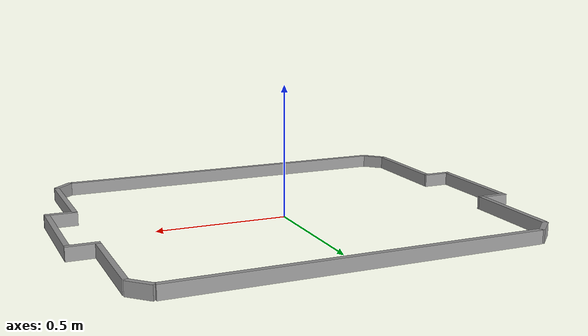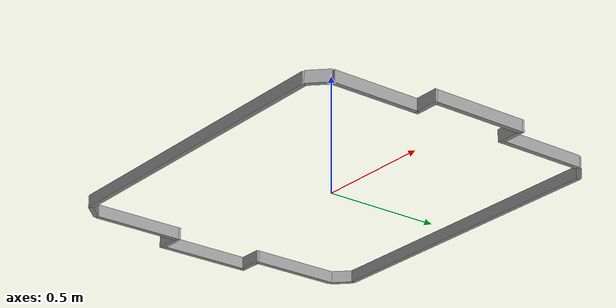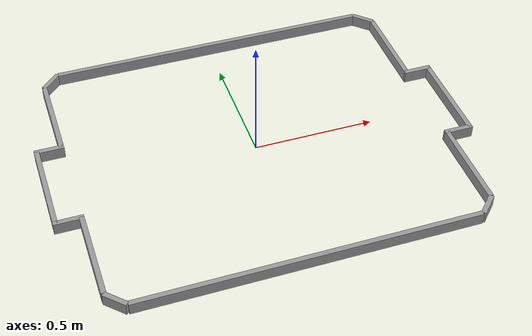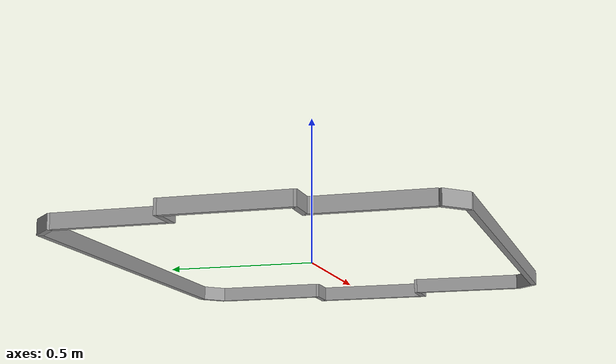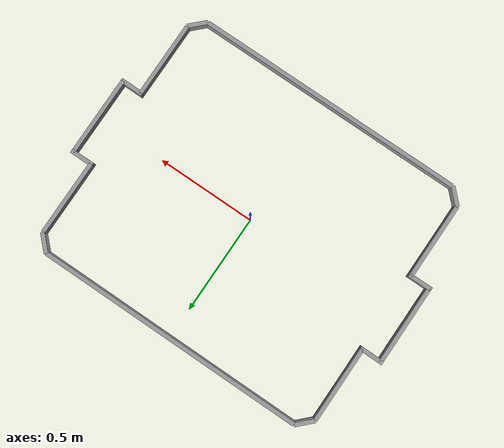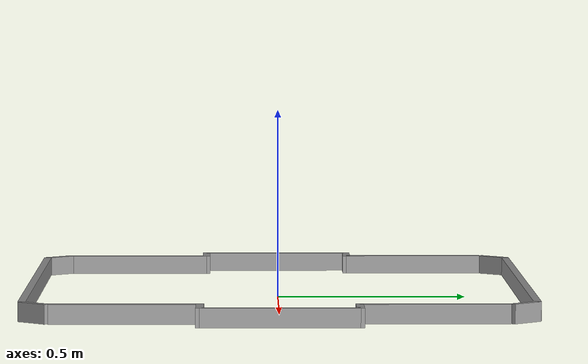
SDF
<?xml version='1.0'?>
<sdf version='1.6'>
  <model name='field_walls'>
    <link name='Wall_2'>
      <pose frame=''>-0.8 -0.2 0 0 -0 0</pose>
      <self_collide>0</self_collide>
      <enable_wind>0</enable_wind>
      <kinematic>0</kinematic>
      <gravity>1</gravity>
      <inertial>
        <mass>1</mass>
        <pose frame=''>0 0 0 0 -0 0</pose>
        <inertia>
          <ixx>1</ixx>
          <ixy>0</ixy>
          <ixz>0</ixz>
          <iyy>1</iyy>
          <iyz>0</iyz>
          <izz>1</izz>
        </inertia>
      </inertial>
      <visual name='Wall_2_Visual'>
        <pose frame=''>0 0 0.025 0 -0 0</pose>
        <geometry>
          <box>
            <size>0.119741 0.02 0.05</size>
          </box>
        </geometry>
        <material>
          <script>
            <uri>file://media/materials/scripts/gazebo.material</uri>
            <name>Gazebo/Grey</name>
          </script>
          <ambient>1 1 1 1</ambient>
          <shader type='vertex'>
            <normal_map>__default__</normal_map>
          </shader>
          <diffuse>0.7 0.7 0.7 1</diffuse>
          <specular>0.01 0.01 0.01 1</specular>
          <emissive>0 0 0 1</emissive>
        </material>
        <meta>
          <layer>0</layer>
        </meta>
        <transparency>0</transparency>
        <cast_shadows>1</cast_shadows>
      </visual>
      <collision name='Wall_2_Collision'>
        <laser_retro>0</laser_retro>
        <max_contacts>10</max_contacts>
        <pose frame=''>0 0 0.025 0 -0 0</pose>
        <geometry>
          <box>
            <size>0.119741 0.02 0.05</size>
          </box>
        </geometry>
        <surface>
          <friction>
            <ode>
              <mu>0.375</mu>
              <mu2>0.375</mu2>
              <fdir1>0 0 0</fdir1>
              <slip1>0</slip1>
              <slip2>0</slip2>
            </ode>
            <torsional>
              <coefficient>1</coefficient>
              <patch_radius>0</patch_radius>
              <surface_radius>0</surface_radius>
              <use_patch_radius>1</use_patch_radius>
              <ode>
                <slip>0</slip>
              </ode>
            </torsional>
          </friction>
          <bounce>
            <restitution_coefficient>0</restitution_coefficient>
            <threshold>1e+06</threshold>
          </bounce>
          <contact>
            <collide_without_contact>0</collide_without_contact>
            <collide_without_contact_bitmask>1</collide_without_contact_bitmask>
            <collide_bitmask>1</collide_bitmask>
            <ode>
              <soft_cfm>0</soft_cfm>
              <soft_erp>0.2</soft_erp>
              <kp>1e+13</kp>
              <kd>1</kd>
              <max_vel>0.01</max_vel>
              <min_depth>0</min_depth>
            </ode>
            <bullet>
              <split_impulse>1</split_impulse>
              <split_impulse_penetration_threshold>-0.01</split_impulse_penetration_threshold>
              <soft_cfm>0</soft_cfm>
              <soft_erp>0.2</soft_erp>
              <kp>1e+13</kp>
              <kd>1</kd>
            </bullet>
          </contact>
        </surface>
      </collision>
    </link>
    <link name='Wall_1'>
      <pose frame=''>-0.85 0 0 0 0 -1.5708</pose>
      <self_collide>0</self_collide>
      <enable_wind>0</enable_wind>
      <kinematic>0</kinematic>
      <gravity>1</gravity>
      <inertial>
        <mass>1</mass>
        <pose frame=''>0 0 0 0 -0 0</pose>
        <inertia>
          <ixx>1</ixx>
          <ixy>0</ixy>
          <ixz>0</ixz>
          <iyy>1</iyy>
          <iyz>0</iyz>
          <izz>1</izz>
        </inertia>
      </inertial>
      <visual name='Wall_1_Visual'>
        <pose frame=''>0 0 0.025 0 -0 0</pose>
        <geometry>
          <box>
            <size>0.4 0.02 0.05</size>
          </box>
        </geometry>
        <material>
          <script>
            <uri>file://media/materials/scripts/gazebo.material</uri>
            <name>Gazebo/Grey</name>
          </script>
          <ambient>1 1 1 1</ambient>
          <shader type='vertex'>
            <normal_map>__default__</normal_map>
          </shader>
          <diffuse>0.7 0.7 0.7 1</diffuse>
          <specular>0.01 0.01 0.01 1</specular>
          <emissive>0 0 0 1</emissive>
        </material>
        <meta>
          <layer>0</layer>
        </meta>
        <transparency>0</transparency>
        <cast_shadows>1</cast_shadows>
      </visual>
      <collision name='Wall_1_Collision'>
        <laser_retro>0</laser_retro>
        <max_contacts>10</max_contacts>
        <pose frame=''>0 0 0.025 0 -0 0</pose>
        <geometry>
          <box>
            <size>0.4 0.02 0.05</size>
          </box>
        </geometry>
        <surface>
          <friction>
            <ode>
              <mu>0.375</mu>
              <mu2>0.375</mu2>
              <fdir1>0 0 0</fdir1>
              <slip1>0</slip1>
              <slip2>0</slip2>
            </ode>
            <torsional>
              <coefficient>1</coefficient>
              <patch_radius>0</patch_radius>
              <surface_radius>0</surface_radius>
              <use_patch_radius>1</use_patch_radius>
              <ode>
                <slip>0</slip>
              </ode>
            </torsional>
          </friction>
          <bounce>
            <restitution_coefficient>0</restitution_coefficient>
            <threshold>1e+06</threshold>
          </bounce>
          <contact>
            <collide_without_contact>0</collide_without_contact>
            <collide_without_contact_bitmask>1</collide_without_contact_bitmask>
            <collide_bitmask>1</collide_bitmask>
            <ode>
              <soft_cfm>0</soft_cfm>
              <soft_erp>0.2</soft_erp>
              <kp>1e+13</kp>
              <kd>1</kd>
              <max_vel>0.01</max_vel>
              <min_depth>0</min_depth>
            </ode>
            <bullet>
              <split_impulse>1</split_impulse>
              <split_impulse_penetration_threshold>-0.01</split_impulse_penetration_threshold>
              <soft_cfm>0</soft_cfm>
              <soft_erp>0.2</soft_erp>
              <kp>1e+13</kp>
              <kd>1</kd>
            </bullet>
          </contact>
        </surface>
      </collision>
    </link>
    <link name='Wall_10'>
      <pose frame=''>0.8 0.2 0 0 -0 3.14159</pose>
      <self_collide>0</self_collide>
      <enable_wind>0</enable_wind>
      <kinematic>0</kinematic>
      <gravity>1</gravity>
      <inertial>
        <mass>1</mass>
        <pose frame=''>0 0 0 0 -0 0</pose>
        <inertia>
          <ixx>1</ixx>
          <ixy>0</ixy>
          <ixz>0</ixz>
          <iyy>1</iyy>
          <iyz>0</iyz>
          <izz>1</izz>
        </inertia>
      </inertial>
      <visual name='Wall_10_Visual'>
        <pose frame=''>0 0 0.025 0 -0 0</pose>
        <geometry>
          <box>
            <size>0.119741 0.02 0.05</size>
          </box>
        </geometry>
        <material>
          <script>
            <uri>file://media/materials/scripts/gazebo.material</uri>
            <name>Gazebo/Grey</name>
          </script>
          <ambient>1 1 1 1</ambient>
          <shader type='vertex'>
            <normal_map>__default__</normal_map>
          </shader>
          <diffuse>0.7 0.7 0.7 1</diffuse>
          <specular>0.01 0.01 0.01 1</specular>
          <emissive>0 0 0 1</emissive>
        </material>
        <meta>
          <layer>0</layer>
        </meta>
        <transparency>0</transparency>
        <cast_shadows>1</cast_shadows>
      </visual>
      <collision name='Wall_10_Collision'>
        <laser_retro>0</laser_retro>
        <max_contacts>10</max_contacts>
        <pose frame=''>0 0 0.025 0 -0 0</pose>
        <geometry>
          <box>
            <size>0.119741 0.02 0.05</size>
          </box>
        </geometry>
        <surface>
          <friction>
            <ode>
              <mu>0.375</mu>
              <mu2>0.375</mu2>
              <fdir1>0 0 0</fdir1>
              <slip1>0</slip1>
              <slip2>0</slip2>
            </ode>
            <torsional>
              <coefficient>1</coefficient>
              <patch_radius>0</patch_radius>
              <surface_radius>0</surface_radius>
              <use_patch_radius>1</use_patch_radius>
              <ode>
                <slip>0</slip>
              </ode>
            </torsional>
          </friction>
          <bounce>
            <restitution_coefficient>0</restitution_coefficient>
            <threshold>1e+06</threshold>
          </bounce>
          <contact>
            <collide_without_contact>0</collide_without_contact>
            <collide_without_contact_bitmask>1</collide_without_contact_bitmask>
            <collide_bitmask>1</collide_bitmask>
            <ode>
              <soft_cfm>0</soft_cfm>
              <soft_erp>0.2</soft_erp>
              <kp>1e+13</kp>
              <kd>1</kd>
              <max_vel>0.01</max_vel>
              <min_depth>0</min_depth>
            </ode>
            <bullet>
              <split_impulse>1</split_impulse>
              <split_impulse_penetration_threshold>-0.01</split_impulse_penetration_threshold>
              <soft_cfm>0</soft_cfm>
              <soft_erp>0.2</soft_erp>
              <kp>1e+13</kp>
              <kd>1</kd>
            </bullet>
          </contact>
        </surface>
      </collision>
    </link>
    <link name='Wall_11'>
      <pose frame=''>0.75 0.39 0 0 -0 1.5708</pose>
      <self_collide>0</self_collide>
      <enable_wind>0</enable_wind>
      <kinematic>0</kinematic>
      <gravity>1</gravity>
      <inertial>
        <mass>1</mass>
        <pose frame=''>0 0 0 0 -0 0</pose>
        <inertia>
          <ixx>1</ixx>
          <ixy>0</ixy>
          <ixz>0</ixz>
          <iyy>1</iyy>
          <iyz>0</iyz>
          <izz>1</izz>
        </inertia>
      </inertial>
      <visual name='Wall_11_Visual'>
        <pose frame=''>0 0 0.025 0 -0 0</pose>
        <geometry>
          <box>
            <size>0.38 0.02 0.05</size>
          </box>
        </geometry>
        <material>
          <script>
            <uri>file://media/materials/scripts/gazebo.material</uri>
            <name>Gazebo/Grey</name>
          </script>
          <ambient>1 1 1 1</ambient>
          <shader type='vertex'>
            <normal_map>__default__</normal_map>
          </shader>
          <diffuse>0.7 0.7 0.7 1</diffuse>
          <specular>0.01 0.01 0.01 1</specular>
          <emissive>0 0 0 1</emissive>
        </material>
        <meta>
          <layer>0</layer>
        </meta>
        <transparency>0</transparency>
        <cast_shadows>1</cast_shadows>
      </visual>
      <collision name='Wall_11_Collision'>
        <laser_retro>0</laser_retro>
        <max_contacts>10</max_contacts>
        <pose frame=''>0 0 0.025 0 -0 0</pose>
        <geometry>
          <box>
            <size>0.38 0.02 0.05</size>
          </box>
        </geometry>
        <surface>
          <friction>
            <ode>
              <mu>0.375</mu>
              <mu2>0.375</mu2>
              <fdir1>0 0 0</fdir1>
              <slip1>0</slip1>
              <slip2>0</slip2>
            </ode>
            <torsional>
              <coefficient>1</coefficient>
              <patch_radius>0</patch_radius>
              <surface_radius>0</surface_radius>
              <use_patch_radius>1</use_patch_radius>
              <ode>
                <slip>0</slip>
              </ode>
            </torsional>
          </friction>
          <bounce>
            <restitution_coefficient>0</restitution_coefficient>
            <threshold>1e+06</threshold>
          </bounce>
          <contact>
            <collide_without_contact>0</collide_without_contact>
            <collide_without_contact_bitmask>1</collide_without_contact_bitmask>
            <collide_bitmask>1</collide_bitmask>
            <ode>
              <soft_cfm>0</soft_cfm>
              <soft_erp>0.2</soft_erp>
              <kp>1e+13</kp>
              <kd>1</kd>
              <max_vel>0.01</max_vel>
              <min_depth>0</min_depth>
            </ode>
            <bullet>
              <split_impulse>1</split_impulse>
              <split_impulse_penetration_threshold>-0.01</split_impulse_penetration_threshold>
              <soft_cfm>0</soft_cfm>
              <soft_erp>0.2</soft_erp>
              <kp>1e+13</kp>
              <kd>1</kd>
            </bullet>
          </contact>
        </surface>
      </collision>
    </link>
    <link name='Wall_12'>
      <pose frame=''>0.716963 0.616934 0 0 -0 2.35729</pose>
      <self_collide>0</self_collide>
      <enable_wind>0</enable_wind>
      <kinematic>0</kinematic>
      <gravity>1</gravity>
      <inertial>
        <mass>1</mass>
        <pose frame=''>0 0 0 0 -0 0</pose>
        <inertia>
          <ixx>1</ixx>
          <ixy>0</ixy>
          <ixz>0</ixz>
          <iyy>1</iyy>
          <iyz>0</iyz>
          <izz>1</izz>
        </inertia>
      </inertial>
      <visual name='Wall_12_Visual'>
        <pose frame=''>0 0 0.025 0 -0 0</pose>
        <geometry>
          <box>
            <size>0.098995 0.02 0.05</size>
          </box>
        </geometry>
        <material>
          <script>
            <uri>file://media/materials/scripts/gazebo.material</uri>
            <name>Gazebo/Grey</name>
          </script>
          <ambient>1 1 1 1</ambient>
          <shader type='vertex'>
            <normal_map>__default__</normal_map>
          </shader>
          <diffuse>0.7 0.7 0.7 1</diffuse>
          <specular>0.01 0.01 0.01 1</specular>
          <emissive>0 0 0 1</emissive>
        </material>
        <meta>
          <layer>0</layer>
        </meta>
        <transparency>0</transparency>
        <cast_shadows>1</cast_shadows>
      </visual>
      <collision name='Wall_12_Collision'>
        <laser_retro>0</laser_retro>
        <max_contacts>10</max_contacts>
        <pose frame=''>0 0 0.025 0 -0 0</pose>
        <geometry>
          <box>
            <size>0.098995 0.02 0.05</size>
          </box>
        </geometry>
        <surface>
          <friction>
            <ode>
              <mu>0.375</mu>
              <mu2>0.375</mu2>
              <fdir1>0 0 0</fdir1>
              <slip1>0</slip1>
              <slip2>0</slip2>
            </ode>
            <torsional>
              <coefficient>1</coefficient>
              <patch_radius>0</patch_radius>
              <surface_radius>0</surface_radius>
              <use_patch_radius>1</use_patch_radius>
              <ode>
                <slip>0</slip>
              </ode>
            </torsional>
          </friction>
          <bounce>
            <restitution_coefficient>0</restitution_coefficient>
            <threshold>1e+06</threshold>
          </bounce>
          <contact>
            <collide_without_contact>0</collide_without_contact>
            <collide_without_contact_bitmask>1</collide_without_contact_bitmask>
            <collide_bitmask>1</collide_bitmask>
            <ode>
              <soft_cfm>0</soft_cfm>
              <soft_erp>0.2</soft_erp>
              <kp>1e+13</kp>
              <kd>1</kd>
              <max_vel>0.01</max_vel>
              <min_depth>0</min_depth>
            </ode>
            <bullet>
              <split_impulse>1</split_impulse>
              <split_impulse_penetration_threshold>-0.01</split_impulse_penetration_threshold>
              <soft_cfm>0</soft_cfm>
              <soft_erp>0.2</soft_erp>
              <kp>1e+13</kp>
              <kd>1</kd>
            </bullet>
          </contact>
        </surface>
      </collision>
    </link>
    <link name='Wall_13'>
      <pose frame=''>0 0.65 0 0 -0 3.14159</pose>
      <self_collide>0</self_collide>
      <enable_wind>0</enable_wind>
      <kinematic>0</kinematic>
      <gravity>1</gravity>
      <inertial>
        <mass>1</mass>
        <pose frame=''>0 0 0 0 -0 0</pose>
        <inertia>
          <ixx>1</ixx>
          <ixy>0</ixy>
          <ixz>0</ixz>
          <iyy>1</iyy>
          <iyz>0</iyz>
          <izz>1</izz>
        </inertia>
      </inertial>
      <visual name='Wall_13_Visual'>
        <pose frame=''>0 0 0.025 0 -0 0</pose>
        <geometry>
          <box>
            <size>1.36 0.02 0.05</size>
          </box>
        </geometry>
        <material>
          <script>
            <uri>file://media/materials/scripts/gazebo.material</uri>
            <name>Gazebo/Grey</name>
          </script>
          <ambient>1 1 1 1</ambient>
          <shader type='vertex'>
            <normal_map>__default__</normal_map>
          </shader>
          <diffuse>0.7 0.7 0.7 1</diffuse>
          <specular>0.01 0.01 0.01 1</specular>
          <emissive>0 0 0 1</emissive>
        </material>
        <meta>
          <layer>0</layer>
        </meta>
        <transparency>0</transparency>
        <cast_shadows>1</cast_shadows>
      </visual>
      <collision name='Wall_13_Collision'>
        <laser_retro>0</laser_retro>
        <max_contacts>10</max_contacts>
        <pose frame=''>0 0 0.025 0 -0 0</pose>
        <geometry>
          <box>
            <size>1.36 0.02 0.05</size>
          </box>
        </geometry>
        <surface>
          <friction>
            <ode>
              <mu>0.375</mu>
              <mu2>0.375</mu2>
              <fdir1>0 0 0</fdir1>
              <slip1>0</slip1>
              <slip2>0</slip2>
            </ode>
            <torsional>
              <coefficient>1</coefficient>
              <patch_radius>0</patch_radius>
              <surface_radius>0</surface_radius>
              <use_patch_radius>1</use_patch_radius>
              <ode>
                <slip>0</slip>
              </ode>
            </torsional>
          </friction>
          <bounce>
            <restitution_coefficient>0</restitution_coefficient>
            <threshold>1e+06</threshold>
          </bounce>
          <contact>
            <collide_without_contact>0</collide_without_contact>
            <collide_without_contact_bitmask>1</collide_without_contact_bitmask>
            <collide_bitmask>1</collide_bitmask>
            <ode>
              <soft_cfm>0</soft_cfm>
              <soft_erp>0.2</soft_erp>
              <kp>1e+13</kp>
              <kd>1</kd>
              <max_vel>0.01</max_vel>
              <min_depth>0</min_depth>
            </ode>
            <bullet>
              <split_impulse>1</split_impulse>
              <split_impulse_penetration_threshold>-0.01</split_impulse_penetration_threshold>
              <soft_cfm>0</soft_cfm>
              <soft_erp>0.2</soft_erp>
              <kp>1e+13</kp>
              <kd>1</kd>
            </bullet>
          </contact>
        </surface>
      </collision>
    </link>
    <link name='Wall_14'>
      <pose frame=''>-0.716963 0.616934 0 0 0 -2.35729</pose>
      <self_collide>0</self_collide>
      <enable_wind>0</enable_wind>
      <kinematic>0</kinematic>
      <gravity>1</gravity>
      <inertial>
        <mass>1</mass>
        <pose frame=''>0 0 0 0 -0 0</pose>
        <inertia>
          <ixx>1</ixx>
          <ixy>0</ixy>
          <ixz>0</ixz>
          <iyy>1</iyy>
          <iyz>0</iyz>
          <izz>1</izz>
        </inertia>
      </inertial>
      <visual name='Wall_14_Visual'>
        <pose frame=''>0 0 0.025 0 -0 0</pose>
        <geometry>
          <box>
            <size>0.098995 0.02 0.05</size>
          </box>
        </geometry>
        <material>
          <script>
            <uri>file://media/materials/scripts/gazebo.material</uri>
            <name>Gazebo/Grey</name>
          </script>
          <ambient>1 1 1 1</ambient>
          <shader type='vertex'>
            <normal_map>__default__</normal_map>
          </shader>
          <diffuse>0.7 0.7 0.7 1</diffuse>
          <specular>0.01 0.01 0.01 1</specular>
          <emissive>0 0 0 1</emissive>
        </material>
        <meta>
          <layer>0</layer>
        </meta>
        <transparency>0</transparency>
        <cast_shadows>1</cast_shadows>
      </visual>
      <collision name='Wall_14_Collision'>
        <laser_retro>0</laser_retro>
        <max_contacts>10</max_contacts>
        <pose frame=''>0 0 0.025 0 -0 0</pose>
        <geometry>
          <box>
            <size>0.098995 0.02 0.05</size>
          </box>
        </geometry>
        <surface>
          <friction>
            <ode>
              <mu>0.375</mu>
              <mu2>0.375</mu2>
              <fdir1>0 0 0</fdir1>
              <slip1>0</slip1>
              <slip2>0</slip2>
            </ode>
            <torsional>
              <coefficient>1</coefficient>
              <patch_radius>0</patch_radius>
              <surface_radius>0</surface_radius>
              <use_patch_radius>1</use_patch_radius>
              <ode>
                <slip>0</slip>
              </ode>
            </torsional>
          </friction>
          <bounce>
            <restitution_coefficient>0</restitution_coefficient>
            <threshold>1e+06</threshold>
          </bounce>
          <contact>
            <collide_without_contact>0</collide_without_contact>
            <collide_without_contact_bitmask>1</collide_without_contact_bitmask>
            <collide_bitmask>1</collide_bitmask>
            <ode>
              <soft_cfm>0</soft_cfm>
              <soft_erp>0.2</soft_erp>
              <kp>1e+13</kp>
              <kd>1</kd>
              <max_vel>0.01</max_vel>
              <min_depth>0</min_depth>
            </ode>
            <bullet>
              <split_impulse>1</split_impulse>
              <split_impulse_penetration_threshold>-0.01</split_impulse_penetration_threshold>
              <soft_cfm>0</soft_cfm>
              <soft_erp>0.2</soft_erp>
              <kp>1e+13</kp>
              <kd>1</kd>
            </bullet>
          </contact>
        </surface>
      </collision>
    </link>
    <link name='Wall_15'>
      <pose frame=''>-0.75 0.39 0 0 0 -1.5708</pose>
      <self_collide>0</self_collide>
      <enable_wind>0</enable_wind>
      <kinematic>0</kinematic>
      <gravity>1</gravity>
      <inertial>
        <mass>1</mass>
        <pose frame=''>0 0 0 0 -0 0</pose>
        <inertia>
          <ixx>1</ixx>
          <ixy>0</ixy>
          <ixz>0</ixz>
          <iyy>1</iyy>
          <iyz>0</iyz>
          <izz>1</izz>
        </inertia>
      </inertial>
      <visual name='Wall_15_Visual'>
        <pose frame=''>0 0 0.025 0 -0 0</pose>
        <geometry>
          <box>
            <size>0.38 0.02 0.05</size>
          </box>
        </geometry>
        <material>
          <script>
            <uri>file://media/materials/scripts/gazebo.material</uri>
            <name>Gazebo/Grey</name>
          </script>
          <ambient>1 1 1 1</ambient>
          <shader type='vertex'>
            <normal_map>__default__</normal_map>
          </shader>
          <diffuse>0.7 0.7 0.7 1</diffuse>
          <specular>0.01 0.01 0.01 1</specular>
          <emissive>0 0 0 1</emissive>
        </material>
        <meta>
          <layer>0</layer>
        </meta>
        <transparency>0</transparency>
        <cast_shadows>1</cast_shadows>
      </visual>
      <collision name='Wall_15_Collision'>
        <laser_retro>0</laser_retro>
        <max_contacts>10</max_contacts>
        <pose frame=''>0 0 0.025 0 -0 0</pose>
        <geometry>
          <box>
            <size>0.38 0.02 0.05</size>
          </box>
        </geometry>
        <surface>
          <friction>
            <ode>
              <mu>0.375</mu>
              <mu2>0.375</mu2>
              <fdir1>0 0 0</fdir1>
              <slip1>0</slip1>
              <slip2>0</slip2>
            </ode>
            <torsional>
              <coefficient>1</coefficient>
              <patch_radius>0</patch_radius>
              <surface_radius>0</surface_radius>
              <use_patch_radius>1</use_patch_radius>
              <ode>
                <slip>0</slip>
              </ode>
            </torsional>
          </friction>
          <bounce>
            <restitution_coefficient>0</restitution_coefficient>
            <threshold>1e+06</threshold>
          </bounce>
          <contact>
            <collide_without_contact>0</collide_without_contact>
            <collide_without_contact_bitmask>1</collide_without_contact_bitmask>
            <collide_bitmask>1</collide_bitmask>
            <ode>
              <soft_cfm>0</soft_cfm>
              <soft_erp>0.2</soft_erp>
              <kp>1e+13</kp>
              <kd>1</kd>
              <max_vel>0.01</max_vel>
              <min_depth>0</min_depth>
            </ode>
            <bullet>
              <split_impulse>1</split_impulse>
              <split_impulse_penetration_threshold>-0.01</split_impulse_penetration_threshold>
              <soft_cfm>0</soft_cfm>
              <soft_erp>0.2</soft_erp>
              <kp>1e+13</kp>
              <kd>1</kd>
            </bullet>
          </contact>
        </surface>
      </collision>
    </link>
    <link name='Wall_16'>
      <pose frame=''>-0.8 0.2 0 0 -0 3.14159</pose>
      <self_collide>0</self_collide>
      <enable_wind>0</enable_wind>
      <kinematic>0</kinematic>
      <gravity>1</gravity>
      <inertial>
        <mass>1</mass>
        <pose frame=''>0 0 0 0 -0 0</pose>
        <inertia>
          <ixx>1</ixx>
          <ixy>0</ixy>
          <ixz>0</ixz>
          <iyy>1</iyy>
          <iyz>0</iyz>
          <izz>1</izz>
        </inertia>
      </inertial>
      <visual name='Wall_16_Visual'>
        <pose frame=''>0 0 0.025 0 -0 0</pose>
        <geometry>
          <box>
            <size>0.119741 0.02 0.05</size>
          </box>
        </geometry>
        <material>
          <script>
            <uri>file://media/materials/scripts/gazebo.material</uri>
            <name>Gazebo/Grey</name>
          </script>
          <ambient>1 1 1 1</ambient>
          <shader type='vertex'>
            <normal_map>__default__</normal_map>
          </shader>
          <diffuse>0.7 0.7 0.7 1</diffuse>
          <specular>0.01 0.01 0.01 1</specular>
          <emissive>0 0 0 1</emissive>
        </material>
        <meta>
          <layer>0</layer>
        </meta>
        <transparency>0</transparency>
        <cast_shadows>1</cast_shadows>
      </visual>
      <collision name='Wall_16_Collision'>
        <laser_retro>0</laser_retro>
        <max_contacts>10</max_contacts>
        <pose frame=''>0 0 0.025 0 -0 0</pose>
        <geometry>
          <box>
            <size>0.119741 0.02 0.05</size>
          </box>
        </geometry>
        <surface>
          <friction>
            <ode>
              <mu>0.375</mu>
              <mu2>0.375</mu2>
              <fdir1>0 0 0</fdir1>
              <slip1>0</slip1>
              <slip2>0</slip2>
            </ode>
            <torsional>
              <coefficient>1</coefficient>
              <patch_radius>0</patch_radius>
              <surface_radius>0</surface_radius>
              <use_patch_radius>1</use_patch_radius>
              <ode>
                <slip>0</slip>
              </ode>
            </torsional>
          </friction>
          <bounce>
            <restitution_coefficient>0</restitution_coefficient>
            <threshold>1e+06</threshold>
          </bounce>
          <contact>
            <collide_without_contact>0</collide_without_contact>
            <collide_without_contact_bitmask>1</collide_without_contact_bitmask>
            <collide_bitmask>1</collide_bitmask>
            <ode>
              <soft_cfm>0</soft_cfm>
              <soft_erp>0.2</soft_erp>
              <kp>1e+13</kp>
              <kd>1</kd>
              <max_vel>0.01</max_vel>
              <min_depth>0</min_depth>
            </ode>
            <bullet>
              <split_impulse>1</split_impulse>
              <split_impulse_penetration_threshold>-0.01</split_impulse_penetration_threshold>
              <soft_cfm>0</soft_cfm>
              <soft_erp>0.2</soft_erp>
              <kp>1e+13</kp>
              <kd>1</kd>
            </bullet>
          </contact>
        </surface>
      </collision>
    </link>
    <link name='Wall_3'>
      <pose frame=''>-0.75 -0.39 0 0 0 -1.5708</pose>
      <self_collide>0</self_collide>
      <enable_wind>0</enable_wind>
      <kinematic>0</kinematic>
      <gravity>1</gravity>
      <inertial>
        <mass>1</mass>
        <pose frame=''>0 0 0 0 -0 0</pose>
        <inertia>
          <ixx>1</ixx>
          <ixy>0</ixy>
          <ixz>0</ixz>
          <iyy>1</iyy>
          <iyz>0</iyz>
          <izz>1</izz>
        </inertia>
      </inertial>
      <visual name='Wall_3_Visual'>
        <pose frame=''>0 0 0.025 0 -0 0</pose>
        <geometry>
          <box>
            <size>0.38 0.02 0.05</size>
          </box>
        </geometry>
        <material>
          <script>
            <uri>file://media/materials/scripts/gazebo.material</uri>
            <name>Gazebo/Grey</name>
          </script>
          <ambient>1 1 1 1</ambient>
          <shader type='vertex'>
            <normal_map>__default__</normal_map>
          </shader>
          <diffuse>0.7 0.7 0.7 1</diffuse>
          <specular>0.01 0.01 0.01 1</specular>
          <emissive>0 0 0 1</emissive>
        </material>
        <meta>
          <layer>0</layer>
        </meta>
        <transparency>0</transparency>
        <cast_shadows>1</cast_shadows>
      </visual>
      <collision name='Wall_3_Collision'>
        <laser_retro>0</laser_retro>
        <max_contacts>10</max_contacts>
        <pose frame=''>0 0 0.025 0 -0 0</pose>
        <geometry>
          <box>
            <size>0.38 0.02 0.05</size>
          </box>
        </geometry>
        <surface>
          <friction>
            <ode>
              <mu>0.375</mu>
              <mu2>0.375</mu2>
              <fdir1>0 0 0</fdir1>
              <slip1>0</slip1>
              <slip2>0</slip2>
            </ode>
            <torsional>
              <coefficient>1</coefficient>
              <patch_radius>0</patch_radius>
              <surface_radius>0</surface_radius>
              <use_patch_radius>1</use_patch_radius>
              <ode>
                <slip>0</slip>
              </ode>
            </torsional>
          </friction>
          <bounce>
            <restitution_coefficient>0</restitution_coefficient>
            <threshold>1e+06</threshold>
          </bounce>
          <contact>
            <collide_without_contact>0</collide_without_contact>
            <collide_without_contact_bitmask>1</collide_without_contact_bitmask>
            <collide_bitmask>1</collide_bitmask>
            <ode>
              <soft_cfm>0</soft_cfm>
              <soft_erp>0.2</soft_erp>
              <kp>1e+13</kp>
              <kd>1</kd>
              <max_vel>0.01</max_vel>
              <min_depth>0</min_depth>
            </ode>
            <bullet>
              <split_impulse>1</split_impulse>
              <split_impulse_penetration_threshold>-0.01</split_impulse_penetration_threshold>
              <soft_cfm>0</soft_cfm>
              <soft_erp>0.2</soft_erp>
              <kp>1e+13</kp>
              <kd>1</kd>
            </bullet>
          </contact>
        </surface>
      </collision>
    </link>
    <link name='Wall_4'>
      <pose frame=''>-0.716963 -0.616934 0 0 0 -0.78421</pose>
      <self_collide>0</self_collide>
      <enable_wind>0</enable_wind>
      <kinematic>0</kinematic>
      <gravity>1</gravity>
      <inertial>
        <mass>1</mass>
        <pose frame=''>0 0 0 0 -0 0</pose>
        <inertia>
          <ixx>1</ixx>
          <ixy>0</ixy>
          <ixz>0</ixz>
          <iyy>1</iyy>
          <iyz>0</iyz>
          <izz>1</izz>
        </inertia>
      </inertial>
      <visual name='Wall_4_Visual'>
        <pose frame=''>0 0 0.025 0 -0 0</pose>
        <geometry>
          <box>
            <size>0.098995 0.02 0.05</size>
          </box>
        </geometry>
        <material>
          <script>
            <uri>file://media/materials/scripts/gazebo.material</uri>
            <name>Gazebo/Grey</name>
          </script>
          <ambient>1 1 1 1</ambient>
          <shader type='vertex'>
            <normal_map>__default__</normal_map>
          </shader>
          <diffuse>0.7 0.7 0.7 1</diffuse>
          <specular>0.01 0.01 0.01 1</specular>
          <emissive>0 0 0 1</emissive>
        </material>
        <meta>
          <layer>0</layer>
        </meta>
        <transparency>0</transparency>
        <cast_shadows>1</cast_shadows>
      </visual>
      <collision name='Wall_4_Collision'>
        <laser_retro>0</laser_retro>
        <max_contacts>10</max_contacts>
        <pose frame=''>0 0 0.025 0 -0 0</pose>
        <geometry>
          <box>
            <size>0.098995 0.02 0.05</size>
          </box>
        </geometry>
        <surface>
          <friction>
            <ode>
              <mu>0.375</mu>
              <mu2>0.375</mu2>
              <fdir1>0 0 0</fdir1>
              <slip1>0</slip1>
              <slip2>0</slip2>
            </ode>
            <torsional>
              <coefficient>1</coefficient>
              <patch_radius>0</patch_radius>
              <surface_radius>0</surface_radius>
              <use_patch_radius>1</use_patch_radius>
              <ode>
                <slip>0</slip>
              </ode>
            </torsional>
          </friction>
          <bounce>
            <restitution_coefficient>0</restitution_coefficient>
            <threshold>1e+06</threshold>
          </bounce>
          <contact>
            <collide_without_contact>0</collide_without_contact>
            <collide_without_contact_bitmask>1</collide_without_contact_bitmask>
            <collide_bitmask>1</collide_bitmask>
            <ode>
              <soft_cfm>0</soft_cfm>
              <soft_erp>0.2</soft_erp>
              <kp>1e+13</kp>
              <kd>1</kd>
              <max_vel>0.01</max_vel>
              <min_depth>0</min_depth>
            </ode>
            <bullet>
              <split_impulse>1</split_impulse>
              <split_impulse_penetration_threshold>-0.01</split_impulse_penetration_threshold>
              <soft_cfm>0</soft_cfm>
              <soft_erp>0.2</soft_erp>
              <kp>1e+13</kp>
              <kd>1</kd>
            </bullet>
          </contact>
        </surface>
      </collision>
    </link>
    <link name='Wall_5'>
      <pose frame=''>0 -0.65 0 0 -0 0</pose>
      <self_collide>0</self_collide>
      <enable_wind>0</enable_wind>
      <kinematic>0</kinematic>
      <gravity>1</gravity>
      <inertial>
        <mass>1</mass>
        <pose frame=''>0 0 0 0 -0 0</pose>
        <inertia>
          <ixx>1</ixx>
          <ixy>0</ixy>
          <ixz>0</ixz>
          <iyy>1</iyy>
          <iyz>0</iyz>
          <izz>1</izz>
        </inertia>
      </inertial>
      <visual name='Wall_5_Visual'>
        <pose frame=''>0 0 0.025 0 -0 0</pose>
        <geometry>
          <box>
            <size>1.36 0.02 0.05</size>
          </box>
        </geometry>
        <material>
          <script>
            <uri>file://media/materials/scripts/gazebo.material</uri>
            <name>Gazebo/Grey</name>
          </script>
          <ambient>1 1 1 1</ambient>
          <shader type='vertex'>
            <normal_map>__default__</normal_map>
          </shader>
          <diffuse>0.7 0.7 0.7 1</diffuse>
          <specular>0.01 0.01 0.01 1</specular>
          <emissive>0 0 0 1</emissive>
        </material>
        <meta>
          <layer>0</layer>
        </meta>
        <transparency>0</transparency>
        <cast_shadows>1</cast_shadows>
      </visual>
      <collision name='Wall_5_Collision'>
        <laser_retro>0</laser_retro>
        <max_contacts>10</max_contacts>
        <pose frame=''>0 0 0.025 0 -0 0</pose>
        <geometry>
          <box>
            <size>1.36 0.02 0.05</size>
          </box>
        </geometry>
        <surface>
          <friction>
            <ode>
              <mu>0.375</mu>
              <mu2>0.375</mu2>
              <fdir1>0 0 0</fdir1>
              <slip1>0</slip1>
              <slip2>0</slip2>
            </ode>
            <torsional>
              <coefficient>1</coefficient>
              <patch_radius>0</patch_radius>
              <surface_radius>0</surface_radius>
              <use_patch_radius>1</use_patch_radius>
              <ode>
                <slip>0</slip>
              </ode>
            </torsional>
          </friction>
          <bounce>
            <restitution_coefficient>0</restitution_coefficient>
            <threshold>1e+06</threshold>
          </bounce>
          <contact>
            <collide_without_contact>0</collide_without_contact>
            <collide_without_contact_bitmask>1</collide_without_contact_bitmask>
            <collide_bitmask>1</collide_bitmask>
            <ode>
              <soft_cfm>0</soft_cfm>
              <soft_erp>0.2</soft_erp>
              <kp>1e+13</kp>
              <kd>1</kd>
              <max_vel>0.01</max_vel>
              <min_depth>0</min_depth>
            </ode>
            <bullet>
              <split_impulse>1</split_impulse>
              <split_impulse_penetration_threshold>-0.01</split_impulse_penetration_threshold>
              <soft_cfm>0</soft_cfm>
              <soft_erp>0.2</soft_erp>
              <kp>1e+13</kp>
              <kd>1</kd>
            </bullet>
          </contact>
        </surface>
      </collision>
    </link>
    <link name='Wall_6'>
      <pose frame=''>0.716963 -0.616934 0 0 -0 0.78421</pose>
      <self_collide>0</self_collide>
      <enable_wind>0</enable_wind>
      <kinematic>0</kinematic>
      <gravity>1</gravity>
      <inertial>
        <mass>1</mass>
        <pose frame=''>0 0 0 0 -0 0</pose>
        <inertia>
          <ixx>1</ixx>
          <ixy>0</ixy>
          <ixz>0</ixz>
          <iyy>1</iyy>
          <iyz>0</iyz>
          <izz>1</izz>
        </inertia>
      </inertial>
      <visual name='Wall_6_Visual'>
        <pose frame=''>0 0 0.025 0 -0 0</pose>
        <geometry>
          <box>
            <size>0.098995 0.02 0.05</size>
          </box>
        </geometry>
        <material>
          <script>
            <uri>file://media/materials/scripts/gazebo.material</uri>
            <name>Gazebo/Grey</name>
          </script>
          <ambient>1 1 1 1</ambient>
          <shader type='vertex'>
            <normal_map>__default__</normal_map>
          </shader>
          <diffuse>0.7 0.7 0.7 1</diffuse>
          <specular>0.01 0.01 0.01 1</specular>
          <emissive>0 0 0 1</emissive>
        </material>
        <meta>
          <layer>0</layer>
        </meta>
        <transparency>0</transparency>
        <cast_shadows>1</cast_shadows>
      </visual>
      <collision name='Wall_6_Collision'>
        <laser_retro>0</laser_retro>
        <max_contacts>10</max_contacts>
        <pose frame=''>0 0 0.025 0 -0 0</pose>
        <geometry>
          <box>
            <size>0.098995 0.02 0.05</size>
          </box>
        </geometry>
        <surface>
          <friction>
            <ode>
              <mu>0.375</mu>
              <mu2>0.375</mu2>
              <fdir1>0 0 0</fdir1>
              <slip1>0</slip1>
              <slip2>0</slip2>
            </ode>
            <torsional>
              <coefficient>1</coefficient>
              <patch_radius>0</patch_radius>
              <surface_radius>0</surface_radius>
              <use_patch_radius>1</use_patch_radius>
              <ode>
                <slip>0</slip>
              </ode>
            </torsional>
          </friction>
          <bounce>
            <restitution_coefficient>0</restitution_coefficient>
            <threshold>1e+06</threshold>
          </bounce>
          <contact>
            <collide_without_contact>0</collide_without_contact>
            <collide_without_contact_bitmask>1</collide_without_contact_bitmask>
            <collide_bitmask>1</collide_bitmask>
            <ode>
              <soft_cfm>0</soft_cfm>
              <soft_erp>0.2</soft_erp>
              <kp>1e+13</kp>
              <kd>1</kd>
              <max_vel>0.01</max_vel>
              <min_depth>0</min_depth>
            </ode>
            <bullet>
              <split_impulse>1</split_impulse>
              <split_impulse_penetration_threshold>-0.01</split_impulse_penetration_threshold>
              <soft_cfm>0</soft_cfm>
              <soft_erp>0.2</soft_erp>
              <kp>1e+13</kp>
              <kd>1</kd>
            </bullet>
          </contact>
        </surface>
      </collision>
    </link>
    <link name='Wall_7'>
      <pose frame=''>0.75 -0.39 0 0 -0 1.5708</pose>
      <self_collide>0</self_collide>
      <enable_wind>0</enable_wind>
      <kinematic>0</kinematic>
      <gravity>1</gravity>
      <inertial>
        <mass>1</mass>
        <pose frame=''>0 0 0 0 -0 0</pose>
        <inertia>
          <ixx>1</ixx>
          <ixy>0</ixy>
          <ixz>0</ixz>
          <iyy>1</iyy>
          <iyz>0</iyz>
          <izz>1</izz>
        </inertia>
      </inertial>
      <visual name='Wall_7_Visual'>
        <pose frame=''>0 0 0.025 0 -0 0</pose>
        <geometry>
          <box>
            <size>0.38 0.02 0.05</size>
          </box>
        </geometry>
        <material>
          <script>
            <uri>file://media/materials/scripts/gazebo.material</uri>
            <name>Gazebo/Grey</name>
          </script>
          <ambient>1 1 1 1</ambient>
          <shader type='vertex'>
            <normal_map>__default__</normal_map>
          </shader>
          <diffuse>0.7 0.7 0.7 1</diffuse>
          <specular>0.01 0.01 0.01 1</specular>
          <emissive>0 0 0 1</emissive>
        </material>
        <meta>
          <layer>0</layer>
        </meta>
        <transparency>0</transparency>
        <cast_shadows>1</cast_shadows>
      </visual>
      <collision name='Wall_7_Collision'>
        <laser_retro>0</laser_retro>
        <max_contacts>10</max_contacts>
        <pose frame=''>0 0 0.025 0 -0 0</pose>
        <geometry>
          <box>
            <size>0.38 0.02 0.05</size>
          </box>
        </geometry>
        <surface>
          <friction>
            <ode>
              <mu>0.375</mu>
              <mu2>0.375</mu2>
              <fdir1>0 0 0</fdir1>
              <slip1>0</slip1>
              <slip2>0</slip2>
            </ode>
            <torsional>
              <coefficient>1</coefficient>
              <patch_radius>0</patch_radius>
              <surface_radius>0</surface_radius>
              <use_patch_radius>1</use_patch_radius>
              <ode>
                <slip>0</slip>
              </ode>
            </torsional>
          </friction>
          <bounce>
            <restitution_coefficient>0</restitution_coefficient>
            <threshold>1e+06</threshold>
          </bounce>
          <contact>
            <collide_without_contact>0</collide_without_contact>
            <collide_without_contact_bitmask>1</collide_without_contact_bitmask>
            <collide_bitmask>1</collide_bitmask>
            <ode>
              <soft_cfm>0</soft_cfm>
              <soft_erp>0.2</soft_erp>
              <kp>1e+13</kp>
              <kd>1</kd>
              <max_vel>0.01</max_vel>
              <min_depth>0</min_depth>
            </ode>
            <bullet>
              <split_impulse>1</split_impulse>
              <split_impulse_penetration_threshold>-0.01</split_impulse_penetration_threshold>
              <soft_cfm>0</soft_cfm>
              <soft_erp>0.2</soft_erp>
              <kp>1e+13</kp>
              <kd>1</kd>
            </bullet>
          </contact>
        </surface>
      </collision>
    </link>
    <link name='Wall_8'>
      <pose frame=''>0.8 -0.2 0 0 -0 0</pose>
      <self_collide>0</self_collide>
      <enable_wind>0</enable_wind>
      <kinematic>0</kinematic>
      <gravity>1</gravity>
      <inertial>
        <mass>1</mass>
        <pose frame=''>0 0 0 0 -0 0</pose>
        <inertia>
          <ixx>1</ixx>
          <ixy>0</ixy>
          <ixz>0</ixz>
          <iyy>1</iyy>
          <iyz>0</iyz>
          <izz>1</izz>
        </inertia>
      </inertial>
      <visual name='Wall_8_Visual'>
        <pose frame=''>0 0 0.025 0 -0 0</pose>
        <geometry>
          <box>
            <size>0.119741 0.02 0.05</size>
          </box>
        </geometry>
        <material>
          <script>
            <uri>file://media/materials/scripts/gazebo.material</uri>
            <name>Gazebo/Grey</name>
          </script>
          <ambient>1 1 1 1</ambient>
          <shader type='vertex'>
            <normal_map>__default__</normal_map>
          </shader>
          <diffuse>0.7 0.7 0.7 1</diffuse>
          <specular>0.01 0.01 0.01 1</specular>
          <emissive>0 0 0 1</emissive>
        </material>
        <meta>
          <layer>0</layer>
        </meta>
        <transparency>0</transparency>
        <cast_shadows>1</cast_shadows>
      </visual>
      <collision name='Wall_8_Collision'>
        <laser_retro>0</laser_retro>
        <max_contacts>10</max_contacts>
        <pose frame=''>0 0 0.025 0 -0 0</pose>
        <geometry>
          <box>
            <size>0.119741 0.02 0.05</size>
          </box>
        </geometry>
        <surface>
          <friction>
            <ode>
              <mu>0.375</mu>
              <mu2>0.375</mu2>
              <fdir1>0 0 0</fdir1>
              <slip1>0</slip1>
              <slip2>0</slip2>
            </ode>
            <torsional>
              <coefficient>1</coefficient>
              <patch_radius>0</patch_radius>
              <surface_radius>0</surface_radius>
              <use_patch_radius>1</use_patch_radius>
              <ode>
                <slip>0</slip>
              </ode>
            </torsional>
          </friction>
          <bounce>
            <restitution_coefficient>0</restitution_coefficient>
            <threshold>1e+06</threshold>
          </bounce>
          <contact>
            <collide_without_contact>0</collide_without_contact>
            <collide_without_contact_bitmask>1</collide_without_contact_bitmask>
            <collide_bitmask>1</collide_bitmask>
            <ode>
              <soft_cfm>0</soft_cfm>
              <soft_erp>0.2</soft_erp>
              <kp>1e+13</kp>
              <kd>1</kd>
              <max_vel>0.01</max_vel>
              <min_depth>0</min_depth>
            </ode>
            <bullet>
              <split_impulse>1</split_impulse>
              <split_impulse_penetration_threshold>-0.01</split_impulse_penetration_threshold>
              <soft_cfm>0</soft_cfm>
              <soft_erp>0.2</soft_erp>
              <kp>1e+13</kp>
              <kd>1</kd>
            </bullet>
          </contact>
        </surface>
      </collision>
    </link>
    <link name='Wall_9'>
      <pose frame=''>0.85 0 0 0 -0 1.5708</pose>
      <self_collide>0</self_collide>
      <enable_wind>0</enable_wind>
      <kinematic>0</kinematic>
      <gravity>1</gravity>
      <inertial>
        <mass>1</mass>
        <pose frame=''>0 0 0 0 -0 0</pose>
        <inertia>
          <ixx>1</ixx>
          <ixy>0</ixy>
          <ixz>0</ixz>
          <iyy>1</iyy>
          <iyz>0</iyz>
          <izz>1</izz>
        </inertia>
      </inertial>
      <visual name='Wall_9_Visual'>
        <pose frame=''>0 0 0.025 0 -0 0</pose>
        <geometry>
          <box>
            <size>0.4 0.02 0.05</size>
          </box>
        </geometry>
        <material>
          <script>
            <uri>file://media/materials/scripts/gazebo.material</uri>
            <name>Gazebo/Grey</name>
          </script>
          <ambient>1 1 1 1</ambient>
          <shader type='vertex'>
            <normal_map>__default__</normal_map>
          </shader>
          <diffuse>0.7 0.7 0.7 1</diffuse>
          <specular>0.01 0.01 0.01 1</specular>
          <emissive>0 0 0 1</emissive>
        </material>
        <meta>
          <layer>0</layer>
        </meta>
        <transparency>0</transparency>
        <cast_shadows>1</cast_shadows>
      </visual>
      <collision name='Wall_9_Collision'>
        <laser_retro>0</laser_retro>
        <max_contacts>10</max_contacts>
        <pose frame=''>0 0 0.025 0 -0 0</pose>
        <geometry>
          <box>
            <size>0.4 0.02 0.05</size>
          </box>
        </geometry>
        <surface>
          <friction>
            <ode>
              <mu>0.375</mu>
              <mu2>0.375</mu2>
              <fdir1>0 0 0</fdir1>
              <slip1>0</slip1>
              <slip2>0</slip2>
            </ode>
            <torsional>
              <coefficient>1</coefficient>
              <patch_radius>0</patch_radius>
              <surface_radius>0</surface_radius>
              <use_patch_radius>1</use_patch_radius>
              <ode>
                <slip>0</slip>
              </ode>
            </torsional>
          </friction>
          <bounce>
            <restitution_coefficient>0</restitution_coefficient>
            <threshold>1e+06</threshold>
          </bounce>
          <contact>
            <collide_without_contact>0</collide_without_contact>
            <collide_without_contact_bitmask>1</collide_without_contact_bitmask>
            <collide_bitmask>1</collide_bitmask>
            <ode>
              <soft_cfm>0</soft_cfm>
              <soft_erp>0.2</soft_erp>
              <kp>1e+13</kp>
              <kd>1</kd>
              <max_vel>0.01</max_vel>
              <min_depth>0</min_depth>
            </ode>
            <bullet>
              <split_impulse>1</split_impulse>
              <split_impulse_penetration_threshold>-0.01</split_impulse_penetration_threshold>
              <soft_cfm>0</soft_cfm>
              <soft_erp>0.2</soft_erp>
              <kp>1e+13</kp>
              <kd>1</kd>
            </bullet>
          </contact>
        </surface>
      </collision>
    </link>
    <static>1</static>
    <allow_auto_disable>1</allow_auto_disable>
  </model>
</sdf>
